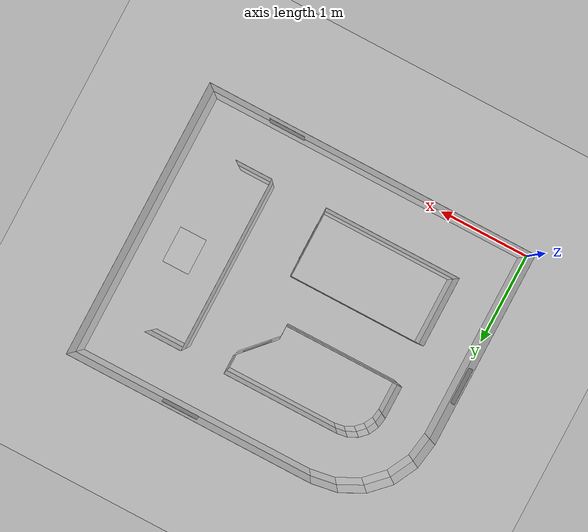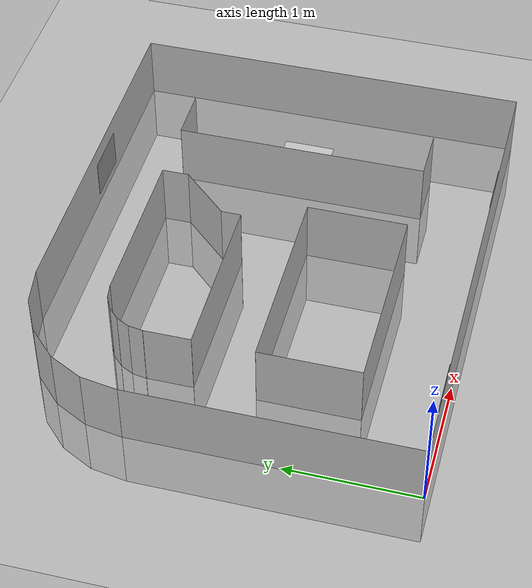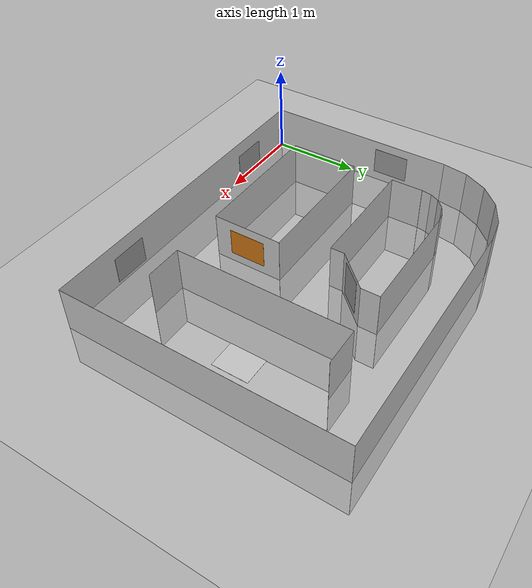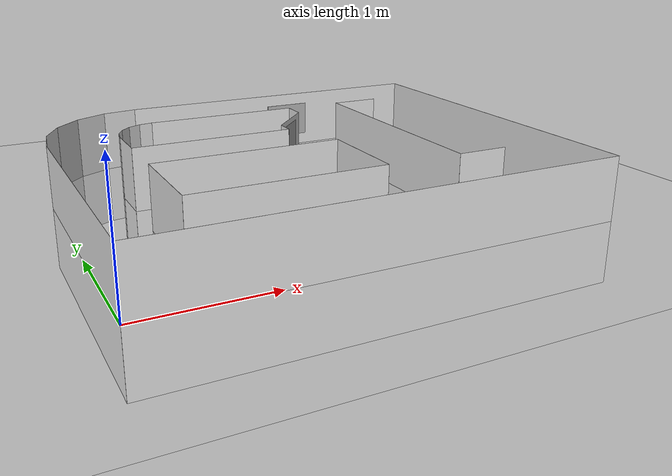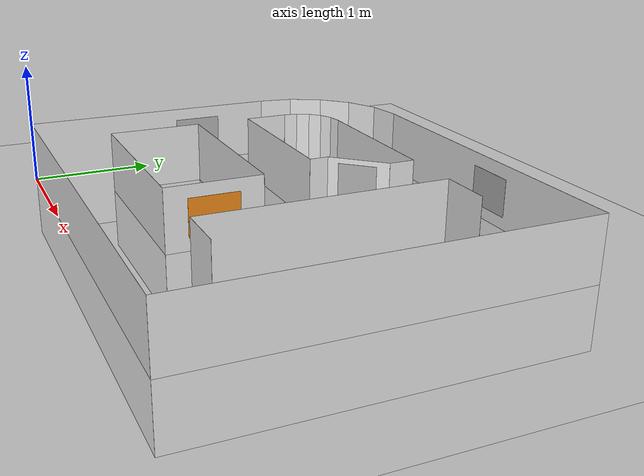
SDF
<sdf version="1.6">
 <world name="default">
  <light name="sun" type="directional">
   <pose>0 0 10 0 -0 0</pose>
   <diffuse>0.8 0.8 0.8 1</diffuse>
   <specular>0.1 0.1 0.1 1</specular>
   <attenuation>
    <range>1000</range>
    <constant>0.9</constant>
    <linear>0.01</linear>
    <quadratic>0.001</quadratic>
   </attenuation>
   <direction>-0.5 0.5 -1</direction>
  </light>
  <model name="ground_plane">
   <static>1</static>
   <link name="link">
    <collision name="collision">
     <geometry><plane><normal>0 0 1</normal><size>100 100</size></plane></geometry>
     <surface><friction><ode><mu>100</mu><mu2>50</mu2></ode></friction></surface>
    </collision>
    <visual name="visual">
     <cast_shadows>0</cast_shadows>
     <geometry><plane><normal>0 0 1</normal><size>100 100</size></plane></geometry>
     <material>
      <script><uri>file://media/materials/scripts/gazebo.material</uri><name>Gazebo/Grey</name></script>
     </material>
    </visual>
   </link>
  </model>
  <model name="wall_0">
   <static>1</static>
   <link name="link">
    <collision name="collision"><geometry><box><size>2.13360426721 0.001 1</size></box></geometry></collision>
    <visual name="visual">
     <geometry><box><size>2.13360426721 0.001 1</size></box></geometry>
     <material>
      <script><name>Gazebo/White</name><uri>file://media/materials/scripts/gazebo.material</uri></script>
     </material>
    </visual>
   </link>
   <pose>0.0 1.0668021336 0 0 0 1.57079632679</pose>
  </model>
  <model name="wall_1">
   <static>1</static>
   <link name="link">
    <collision name="collision"><geometry><box><size>0.286087921841 0.001 1</size></box></geometry></collision>
    <visual name="visual">
     <geometry><box><size>0.286087921841 0.001 1</size></box></geometry>
     <material>
      <script><name>Gazebo/White</name><uri>file://media/materials/scripts/gazebo.material</uri></script>
     </material>
    </visual>
   </link>
   <pose>0.0223770055039 2.2748871196 0 0 0 1.41371669412</pose>
  </model>
  <model name="wall_2">
   <static>1</static>
   <link name="link">
    <collision name="collision"><geometry><box><size>0.286087921841 0.001 1</size></box></geometry></collision>
    <visual name="visual">
     <geometry><box><size>0.286087921841 0.001 1</size></box></geometry>
     <material>
      <script><name>Gazebo/White</name><uri>file://media/materials/scripts/gazebo.material</uri></script>
     </material>
    </visual>
   </link>
   <pose>0.109694610311 2.54362307442 0 0 0 1.09955742876</pose>
  </model>
  <model name="wall_3">
   <static>1</static>
   <link name="link">
    <collision name="collision"><geometry><box><size>0.286087921841 0.001 1</size></box></geometry></collision>
    <visual name="visual">
     <geometry><box><size>0.286087921841 0.001 1</size></box></geometry>
     <material>
      <script><name>Gazebo/White</name><uri>file://media/materials/scripts/gazebo.material</uri></script>
     </material>
    </visual>
   </link>
   <pose>0.275782564389 2.77222353162 0 0 0 0.785398163397</pose>
  </model>
  <model name="wall_4">
   <static>1</static>
   <link name="link">
    <collision name="collision"><geometry><box><size>0.286087921841 0.001 1</size></box></geometry></collision>
    <visual name="visual">
     <geometry><box><size>0.286087921841 0.001 1</size></box></geometry>
     <material>
      <script><name>Gazebo/White</name><uri>file://media/materials/scripts/gazebo.material</uri></script>
     </material>
    </visual>
   </link>
   <pose>0.50438302159 2.9383114857 0 0 0 0.471238898038</pose>
  </model>
  <model name="wall_5">
   <static>1</static>
   <link name="link">
    <collision name="collision"><geometry><box><size>0.286087921841 0.001 1</size></box></geometry></collision>
    <visual name="visual">
     <geometry><box><size>0.286087921841 0.001 1</size></box></geometry>
     <material>
      <script><name>Gazebo/White</name><uri>file://media/materials/scripts/gazebo.material</uri></script>
     </material>
    </visual>
   </link>
   <pose>0.77311897641 3.02562909051 0 0 0 0.157079632679</pose>
  </model>
  <model name="wall_6">
   <static>1</static>
   <link name="link">
    <collision name="collision"><geometry><box><size>2.74320548641 0.001 1</size></box></geometry></collision>
    <visual name="visual">
     <geometry><box><size>2.74320548641 0.001 1</size></box></geometry>
     <material>
      <script><name>Gazebo/White</name><uri>file://media/materials/scripts/gazebo.material</uri></script>
     </material>
    </visual>
   </link>
   <pose>2.28600457201 3.04800609601 0 0 0 0.0</pose>
  </model>
  <model name="wall_7">
   <static>1</static>
   <link name="link">
    <collision name="collision"><geometry><box><size>3.04800609601 0.001 1</size></box></geometry></collision>
    <visual name="visual">
     <geometry><box><size>3.04800609601 0.001 1</size></box></geometry>
     <material>
      <script><name>Gazebo/White</name><uri>file://media/materials/scripts/gazebo.material</uri></script>
     </material>
    </visual>
   </link>
   <pose>3.65760731521 1.52400304801 0 0 0 -1.57079632679</pose>
  </model>
  <model name="wall_8">
   <static>1</static>
   <link name="link">
    <collision name="collision"><geometry><box><size>3.65760731521 0.001 1</size></box></geometry></collision>
    <visual name="visual">
     <geometry><box><size>3.65760731521 0.001 1</size></box></geometry>
     <material>
      <script><name>Gazebo/White</name><uri>file://media/materials/scripts/gazebo.material</uri></script>
     </material>
    </visual>
   </link>
   <pose>1.82880365761 0.0 0 0 0 3.14159265359</pose>
  </model>
  <model name="wall_9">
   <static>1</static>
   <link name="link">
    <collision name="collision"><geometry><box><size>0.762001524003 0.001 1</size></box></geometry></collision>
    <visual name="visual">
     <geometry><box><size>0.762001524003 0.001 1</size></box></geometry>
     <material>
      <script><name>Gazebo/White</name><uri>file://media/materials/scripts/gazebo.material</uri></script>
     </material>
    </visual>
   </link>
   <pose>0.558801117602 0.939801879604 0 0 0 1.57079632679</pose>
  </model>
  <model name="wall_10">
   <static>1</static>
   <link name="link">
    <collision name="collision"><geometry><box><size>1.49860299721 0.001 1</size></box></geometry></collision>
    <visual name="visual">
     <geometry><box><size>1.49860299721 0.001 1</size></box></geometry>
     <material>
      <script><name>Gazebo/White</name><uri>file://media/materials/scripts/gazebo.material</uri></script>
     </material>
    </visual>
   </link>
   <pose>1.30810261621 1.32080264161 0 0 0 0.0</pose>
  </model>
  <model name="wall_11">
   <static>1</static>
   <link name="link">
    <collision name="collision"><geometry><box><size>0.762001524003 0.001 1</size></box></geometry></collision>
    <visual name="visual">
     <geometry><box><size>0.762001524003 0.001 1</size></box></geometry>
     <material>
      <script><name>Gazebo/White</name><uri>file://media/materials/scripts/gazebo.material</uri></script>
     </material>
    </visual>
   </link>
   <pose>2.05740411481 0.939801879604 0 0 0 -1.57079632679</pose>
  </model>
  <model name="wall_12">
   <static>1</static>
   <link name="link">
    <collision name="collision"><geometry><box><size>1.49860299721 0.001 1</size></box></geometry></collision>
    <visual name="visual">
     <geometry><box><size>1.49860299721 0.001 1</size></box></geometry>
     <material>
      <script><name>Gazebo/White</name><uri>file://media/materials/scripts/gazebo.material</uri></script>
     </material>
    </visual>
   </link>
   <pose>1.30810261621 0.558801117602 0 0 0 3.14159265359</pose>
  </model>
  <model name="wall_13">
   <static>1</static>
   <link name="link">
    <collision name="collision"><geometry><box><size>0.351000762002 0.001 1</size></box></geometry></collision>
    <visual name="visual">
     <geometry><box><size>0.351000762002 0.001 1</size></box></geometry>
     <material>
      <script><name>Gazebo/White</name><uri>file://media/materials/scripts/gazebo.material</uri></script>
     </material>
    </visual>
   </link>
   <pose>0.558801117602 1.956502 0 0 0 1.57079632679</pose>
  </model>
  <model name="wall_14">
   <static>1</static>
   <link name="link">
    <collision name="collision"><geometry><box><size>0.111256414049 0.001 1</size></box></geometry></collision>
    <visual name="visual">
     <geometry><box><size>0.111256414049 0.001 1</size></box></geometry>
     <material>
      <script><name>Gazebo/White</name><uri>file://media/materials/scripts/gazebo.material</uri></script>
     </material>
    </visual>
   </link>
   <pose>0.567503286409 2.1885475987 0 0 0 1.41371669412</pose>
  </model>
  <model name="wall_15">
   <static>1</static>
   <link name="link">
    <collision name="collision"><geometry><box><size>0.111256414049 0.001 1</size></box></geometry></collision>
    <visual name="visual">
     <geometry><box><size>0.111256414049 0.001 1</size></box></geometry>
     <material>
      <script><name>Gazebo/White</name><uri>file://media/materials/scripts/gazebo.material</uri></script>
     </material>
    </visual>
   </link>
   <pose>0.601460132723 2.29305602557 0 0 0 1.09955742876</pose>
  </model>
  <model name="wall_16">
   <static>1</static>
   <link name="link">
    <collision name="collision"><geometry><box><size>0.111256414049 0.001 1</size></box></geometry></collision>
    <visual name="visual">
     <geometry><box><size>0.111256414049 0.001 1</size></box></geometry>
     <material>
      <script><name>Gazebo/White</name><uri>file://media/materials/scripts/gazebo.material</uri></script>
     </material>
    </visual>
   </link>
   <pose>0.666049892642 2.38195620337 0 0 0 0.785398163397</pose>
  </model>
  <model name="wall_17">
   <static>1</static>
   <link name="link">
    <collision name="collision"><geometry><box><size>0.111256414049 0.001 1</size></box></geometry></collision>
    <visual name="visual">
     <geometry><box><size>0.111256414049 0.001 1</size></box></geometry>
     <material>
      <script><name>Gazebo/White</name><uri>file://media/materials/scripts/gazebo.material</uri></script>
     </material>
    </visual>
   </link>
   <pose>0.754950070443 2.44654596329 0 0 0 0.471238898038</pose>
  </model>
  <model name="wall_18">
   <static>1</static>
   <link name="link">
    <collision name="collision"><geometry><box><size>0.111256414049 0.001 1</size></box></geometry></collision>
    <visual name="visual">
     <geometry><box><size>0.111256414049 0.001 1</size></box></geometry>
     <material>
      <script><name>Gazebo/White</name><uri>file://media/materials/scripts/gazebo.material</uri></script>
     </material>
    </visual>
   </link>
   <pose>0.859458497317 2.4805028096 0 0 0 0.157079632679</pose>
  </model>
  <model name="wall_19">
   <static>1</static>
   <link name="link">
    <collision name="collision"><geometry><box><size>1.27000254001 0.001 1</size></box></geometry></collision>
    <visual name="visual">
     <geometry><box><size>1.27000254001 0.001 1</size></box></geometry>
     <material>
      <script><name>Gazebo/White</name><uri>file://media/materials/scripts/gazebo.material</uri></script>
     </material>
    </visual>
   </link>
   <pose>1.54940309881 2.48920497841 0 0 0 0.0</pose>
  </model>
  <model name="wall_20">
   <static>1</static>
   <link name="link">
    <collision name="collision"><geometry><box><size>0.203200406401 0.001 1</size></box></geometry></collision>
    <visual name="visual">
     <geometry><box><size>0.203200406401 0.001 1</size></box></geometry>
     <material>
      <script><name>Gazebo/White</name><uri>file://media/materials/scripts/gazebo.material</uri></script>
     </material>
    </visual>
   </link>
   <pose>2.18440436881 2.38760477521 0 0 0 -1.57079632679</pose>
  </model>
  <model name="wall_21">
   <static>1</static>
   <link name="link">
    <collision name="collision"><geometry><box><size>0.485267289168 0.001 1</size></box></geometry></collision>
    <visual name="visual">
     <geometry><box><size>0.485267289168 0.001 1</size></box></geometry>
     <material>
      <script><name>Gazebo/White</name><uri>file://media/materials/scripts/gazebo.material</uri></script>
     </material>
    </visual>
   </link>
   <pose>2.01930403861 2.10820421641 0 0 0 -2.31917437432</pose>
  </model>
  <model name="wall_22">
   <static>1</static>
   <link name="link">
    <collision name="collision"><geometry><box><size>0.152800355601 0.001 1</size></box></geometry></collision>
    <visual name="visual">
     <geometry><box><size>0.152800355601 0.001 1</size></box></geometry>
     <material>
      <script><name>Gazebo/White</name><uri>file://media/materials/scripts/gazebo.material</uri></script>
     </material>
    </visual>
   </link>
   <pose>1.854229 1.856205 0 0 0 -1.57079632679</pose>
  </model>
  <model name="wall_23">
   <static>1</static>
   <link name="link">
    <collision name="collision"><geometry><box><size>1.29540259081 0.001 1</size></box></geometry></collision>
    <visual name="visual">
     <geometry><box><size>1.29540259081 0.001 1</size></box></geometry>
     <material>
      <script><name>Gazebo/White</name><uri>file://media/materials/scripts/gazebo.material</uri></script>
     </material>
    </visual>
   </link>
   <pose>1.206500 1.780728 0 0 0 3.14159265359</pose>
  </model>
  <model name="wall_24">
   <static>1</static>
   <link name="link">
    <collision name="collision"><geometry><box><size>0.408001016002 0.001 1</size></box></geometry></collision>
    <visual name="visual">
     <geometry><box><size>0.408001016002 0.001 1</size></box></geometry>
     <material>
      <script><name>Gazebo/White</name><uri>file://media/materials/scripts/gazebo.material</uri></script>
     </material>
    </visual>
   </link>
   <pose>2.87020574041 2.48920497841 0 0 0 0.0</pose>
  </model>
  <model name="wall_25">
   <static>1</static>
   <link name="link">
    <collision name="collision"><geometry><box><size>0.408001016002 0.001 1</size></box></geometry></collision>
    <visual name="visual">
     <geometry><box><size>0.408001016002 0.001 1</size></box></geometry>
     <material>
      <script><name>Gazebo/White</name><uri>file://media/materials/scripts/gazebo.material</uri></script>
     </material>
    </visual>
   </link>
   <pose>2.87020574041 0.558801117602 0 0 0 3.14159265359</pose>
  </model>
  <model name="wall_26">
   <static>1</static>
   <link name="link">
    <collision name="collision"><geometry><box><size>1.93040386081 0.001 1</size></box></geometry></collision>
    <visual name="visual">
     <geometry><box><size>1.93040386081 0.001 1</size></box></geometry>
     <material>
      <script><name>Gazebo/White</name><uri>file://media/materials/scripts/gazebo.material</uri></script>
     </material>
    </visual>
   </link>
   <pose>2.666418 1.52400304801 0 0 0 1.57079632679</pose>
  </model>
  <model name="hotdog_box">
   <pose>0.001 1.496985 0.24907 1.57079632679 0.0 -1.57079632679</pose>
   <link name="link_1">
    <visual name="visual">
     <geometry><box><size>0.4 0.3 0.001</size></box></geometry>
     <material>
      <script>
       <uri>model://hotdog_box/materials/scripts</uri>
       <uri>model://hotdog_box/materials/textures</uri>
       <name>hotdog_pat</name>
      </script>
     </material>
    </visual>
   </link>
   <static>1</static>
  </model>
  <model name="banana_box">
   <pose>0.717 0.02 0.2017 1.57079632679 0.0 0.0</pose>
   <link name="link_1">
    <visual name="visual">
     <geometry><box><size>0.4 0.3 0.001</size></box></geometry>
     <material>
      <script>
       <uri>model://banana_box/materials/scripts</uri>
       <uri>model://banana_box/materials/textures</uri>
       <name>banana_pat</name>
      </script>
     </material>
    </visual>
   </link>
   <static>1</static>
  </model>
  <model name="orange_box">
   <pose>2.061475 0.936684 0.24907 1.57079632679 0.0 -1.57079632679</pose>
   <link name="link_1">
    <visual name="visual">
     <geometry><box><size>0.4 0.3 0.001</size></box></geometry>
     <material>
      <script>
       <uri>model://orange_box/materials/scripts</uri>
       <uri>model://orange_box/materials/textures</uri>
       <name>orange_pat</name>
      </script>
     </material>
    </visual>
   </link>
   <static>1</static>
  </model>
  <model name="apple_box">
   <pose>2.783312 0.02 0.2017 1.57079632679 0.0 0.0</pose>
   <link name="link_1">
    <visual name="visual">
     <geometry><box><size>0.4 0.3 0.001</size></box></geometry>
     <material>
      <script>
       <uri>model://apple_box/materials/scripts</uri>
       <uri>model://apple_box/materials/textures</uri>
       <name>apple_pat</name>
      </script>
     </material>
    </visual>
   </link>
   <static>1</static>
  </model>
  <model name="cake_box">
   <pose>2.41 3.031854 0.250166 1.57079632679 0.0 3.14159</pose>
   <link name="link_1">
    <visual name="visual">
     <geometry><box><size>0.4 0.3 0.001</size></box></geometry>
     <material>
      <script>
       <uri>model://cake_box/materials/scripts</uri>
       <uri>model://cake_box/materials/textures</uri>
       <name>cake_pat</name>
      </script>
     </material>
    </visual>
   </link>
   <static>1</static>
  </model>
  <model name="squirtle_box">
   <pose>3.15 1.6 0 0.0 0.0 1.57079632679</pose>
   <link name="link_1">
    <visual name="visual">
     <geometry><box><size>0.4 0.3 0.001</size></box></geometry>
     <material>
      <script>
       <uri>model://squirtle_box/materials/scripts</uri>
       <uri>model://squirtle_box/materials/textures</uri>
       <name>squirtle_pat</name>
      </script>
     </material>
    </visual>
   </link>
   <static>1</static>
  </model>
  <model name="dog_box">
   <pose>2.017065 2.100060 0.258166 -2.313087 -1.57079632679 -1.57079632679</pose>
   <link name="link_1">
    <visual name="visual">
     <geometry><box><size>0.4 0.3 0.001</size></box></geometry>
     <material>
      <script>
       <uri>model://dog_box/materials/scripts</uri>
       <uri>model://dog_box/materials/textures</uri>
       <name>dog_pat</name>
      </script>
     </material>
    </visual>
   </link>
   <static>1</static>
  </model>
  <gravity>0 0 -9.8</gravity>
  <magnetic_field>6e-06 2.3e-05 -4.2e-05</magnetic_field>
  <atmosphere type="adiabatic"/>
  <physics name="default_physics" default="0" type="ode">
   <max_step_size>0.001</max_step_size>
   <real_time_factor>1</real_time_factor>
   <real_time_update_rate>1000</real_time_update_rate>
  </physics>
  <scene><ambient>0.4 0.4 0.4 1</ambient><background>0.7 0.7 0.7 1</background><shadows>1</shadows></scene>
  <spherical_coordinates>
   <surface_model>EARTH_WGS84</surface_model>
   <latitude_deg>0</latitude_deg>
   <longitude_deg>0</longitude_deg>
   <elevation>0</elevation>
   <heading_deg>0</heading_deg>
  </spherical_coordinates>
 </world>
</sdf>
